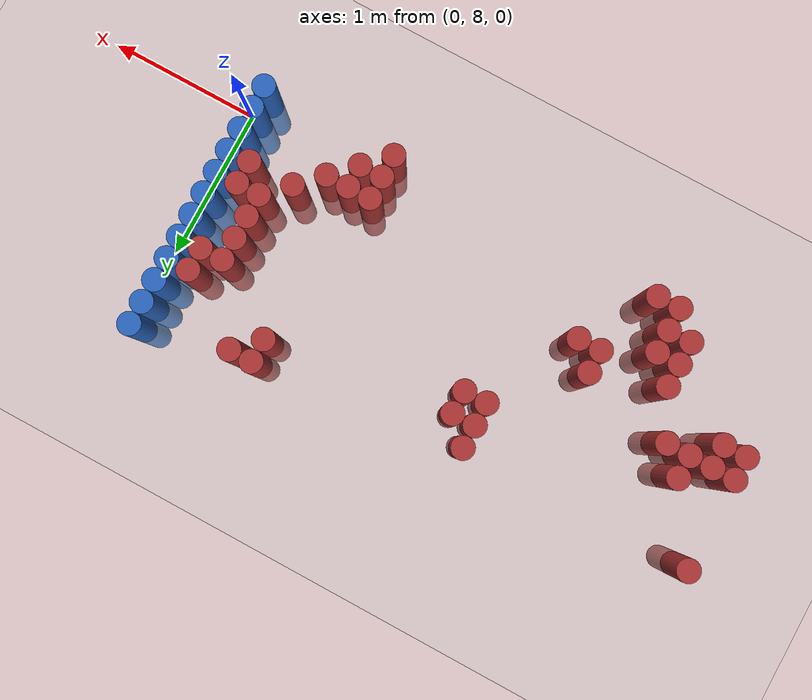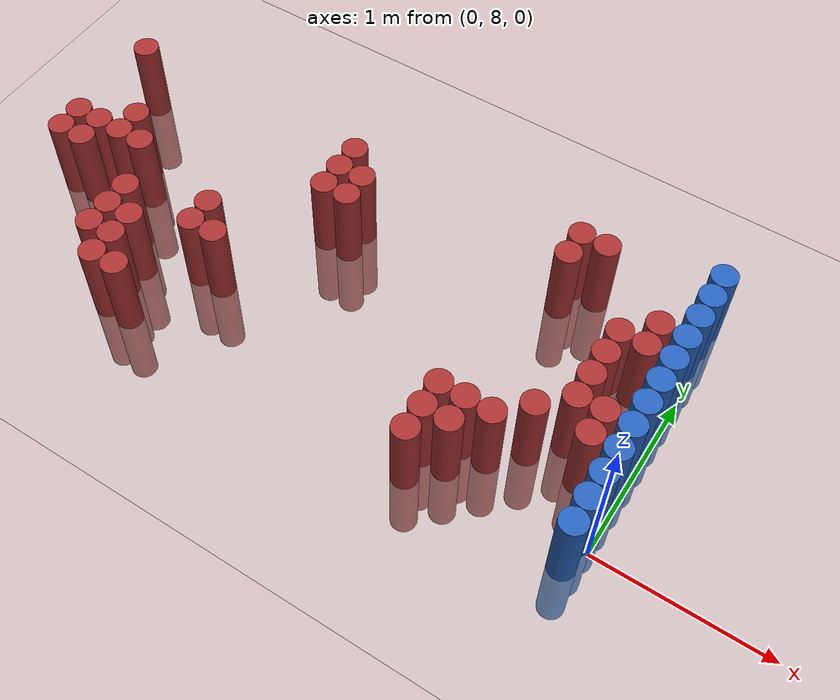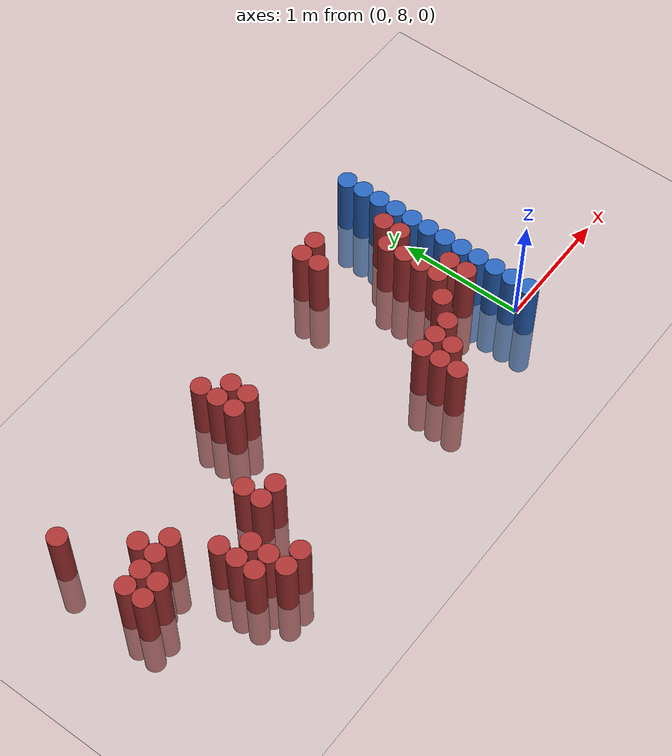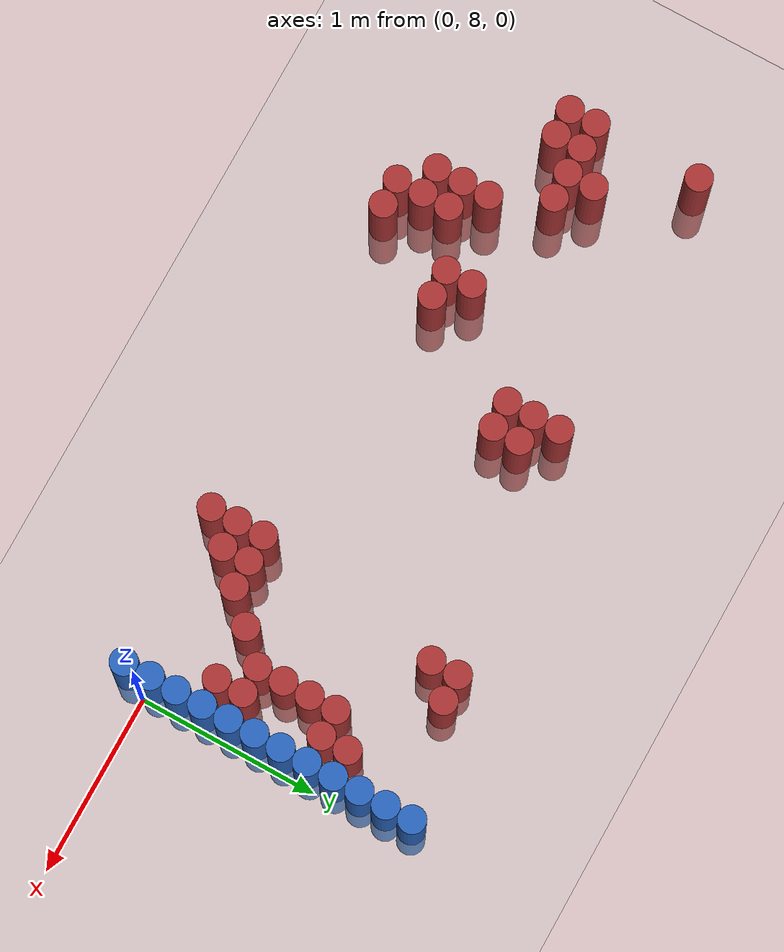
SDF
<sdf version="1.6">
 <world name="default">
  <model name="ground_plane">
   <static>1</static>
   <link name="link">
    <collision name="collision">
     <geometry><plane><normal>0 0 1</normal><size>100 100</size></plane></geometry>
     <surface><friction><ode><mu>100</mu><mu2>50</mu2></ode></friction></surface>
    </collision>
    <visual name="visual">
     <cast_shadows>0</cast_shadows>
     <geometry><plane><normal>0 0 1</normal><size>100 100</size></plane></geometry>
     <material>
      <script><uri>file://media/materials/scripts/gazebo.material</uri><name>Gazebo/Grey</name></script>
     </material>
    </visual>
   </link>
  </model>
  <model name="unit_cylinder_152">
   <static>1</static>
   <pose>-3.675000 8.475000 0.000000 0.000000 0.000000 0.000000</pose>
   <link name="link">
    <inertial>
     <mass>1</mass>
     <inertia><ixx>0.145833</ixx><ixy>0</ixy><ixz>0</ixz><iyy>0.145833</iyy><iyz>0</iyz><izz>0.125</izz></inertia>
    </inertial>
    <collision name="collision">
     <geometry><cylinder><radius>0.075000</radius><length>1</length></cylinder></geometry>
    </collision>
    <visual name="visual">
     <geometry><cylinder><radius>0.075000</radius><length>1</length></cylinder></geometry>
     <material>
      <ambient>0.648000 0.192000 0.192000 1</ambient>
      <diffuse>0.648000 0.192000 0.192000 1</diffuse>
     </material>
     <material>
      <script><name>Gazebo/Grey</name><uri>file://media/materials/scripts/gazebo.material</uri></script>
     </material>
    </visual>
   </link>
  </model>
  <model name="unit_cylinder_153">
   <static>1</static>
   <pose>-3.675000 8.625000 0.000000 0.000000 0.000000 0.000000</pose>
   <link name="link">
    <inertial>
     <mass>1</mass>
     <inertia><ixx>0.145833</ixx><ixy>0</ixy><ixz>0</ixz><iyy>0.145833</iyy><iyz>0</iyz><izz>0.125</izz></inertia>
    </inertial>
    <collision name="collision">
     <geometry><cylinder><radius>0.075000</radius><length>1</length></cylinder></geometry>
    </collision>
    <visual name="visual">
     <geometry><cylinder><radius>0.075000</radius><length>1</length></cylinder></geometry>
     <material>
      <ambient>0.648000 0.192000 0.192000 1</ambient>
      <diffuse>0.648000 0.192000 0.192000 1</diffuse>
     </material>
     <material>
      <script><name>Gazebo/Grey</name><uri>file://media/materials/scripts/gazebo.material</uri></script>
     </material>
    </visual>
   </link>
  </model>
  <model name="unit_cylinder_154">
   <static>1</static>
   <pose>-3.675000 9.225000 0.000000 0.000000 0.000000 0.000000</pose>
   <link name="link">
    <inertial>
     <mass>1</mass>
     <inertia><ixx>0.145833</ixx><ixy>0</ixy><ixz>0</ixz><iyy>0.145833</iyy><iyz>0</iyz><izz>0.125</izz></inertia>
    </inertial>
    <collision name="collision">
     <geometry><cylinder><radius>0.075000</radius><length>1</length></cylinder></geometry>
    </collision>
    <visual name="visual">
     <geometry><cylinder><radius>0.075000</radius><length>1</length></cylinder></geometry>
     <material>
      <ambient>0.648000 0.192000 0.192000 1</ambient>
      <diffuse>0.648000 0.192000 0.192000 1</diffuse>
     </material>
     <material>
      <script><name>Gazebo/Grey</name><uri>file://media/materials/scripts/gazebo.material</uri></script>
     </material>
    </visual>
   </link>
  </model>
  <model name="unit_cylinder_155">
   <static>1</static>
   <pose>-3.525000 8.475000 0.000000 0.000000 0.000000 0.000000</pose>
   <link name="link">
    <inertial>
     <mass>1</mass>
     <inertia><ixx>0.145833</ixx><ixy>0</ixy><ixz>0</ixz><iyy>0.145833</iyy><iyz>0</iyz><izz>0.125</izz></inertia>
    </inertial>
    <collision name="collision">
     <geometry><cylinder><radius>0.075000</radius><length>1</length></cylinder></geometry>
    </collision>
    <visual name="visual">
     <geometry><cylinder><radius>0.075000</radius><length>1</length></cylinder></geometry>
     <material>
      <ambient>0.648000 0.192000 0.192000 1</ambient>
      <diffuse>0.648000 0.192000 0.192000 1</diffuse>
     </material>
     <material>
      <script><name>Gazebo/Grey</name><uri>file://media/materials/scripts/gazebo.material</uri></script>
     </material>
    </visual>
   </link>
  </model>
  <model name="unit_cylinder_156">
   <static>1</static>
   <pose>-3.525000 8.625000 0.000000 0.000000 0.000000 0.000000</pose>
   <link name="link">
    <inertial>
     <mass>1</mass>
     <inertia><ixx>0.145833</ixx><ixy>0</ixy><ixz>0</ixz><iyy>0.145833</iyy><iyz>0</iyz><izz>0.125</izz></inertia>
    </inertial>
    <collision name="collision">
     <geometry><cylinder><radius>0.075000</radius><length>1</length></cylinder></geometry>
    </collision>
    <visual name="visual">
     <geometry><cylinder><radius>0.075000</radius><length>1</length></cylinder></geometry>
     <material>
      <ambient>0.648000 0.192000 0.192000 1</ambient>
      <diffuse>0.648000 0.192000 0.192000 1</diffuse>
     </material>
     <material>
      <script><name>Gazebo/Grey</name><uri>file://media/materials/scripts/gazebo.material</uri></script>
     </material>
    </visual>
   </link>
  </model>
  <model name="unit_cylinder_157">
   <static>1</static>
   <pose>-3.375000 8.625000 0.000000 0.000000 0.000000 0.000000</pose>
   <link name="link">
    <inertial>
     <mass>1</mass>
     <inertia><ixx>0.145833</ixx><ixy>0</ixy><ixz>0</ixz><iyy>0.145833</iyy><iyz>0</iyz><izz>0.125</izz></inertia>
    </inertial>
    <collision name="collision">
     <geometry><cylinder><radius>0.075000</radius><length>1</length></cylinder></geometry>
    </collision>
    <visual name="visual">
     <geometry><cylinder><radius>0.075000</radius><length>1</length></cylinder></geometry>
     <material>
      <ambient>0.648000 0.192000 0.192000 1</ambient>
      <diffuse>0.648000 0.192000 0.192000 1</diffuse>
     </material>
     <material>
      <script><name>Gazebo/Grey</name><uri>file://media/materials/scripts/gazebo.material</uri></script>
     </material>
    </visual>
   </link>
  </model>
  <model name="unit_cylinder_158">
   <static>1</static>
   <pose>-3.375000 8.775000 0.000000 0.000000 0.000000 0.000000</pose>
   <link name="link">
    <inertial>
     <mass>1</mass>
     <inertia><ixx>0.145833</ixx><ixy>0</ixy><ixz>0</ixz><iyy>0.145833</iyy><iyz>0</iyz><izz>0.125</izz></inertia>
    </inertial>
    <collision name="collision">
     <geometry><cylinder><radius>0.075000</radius><length>1</length></cylinder></geometry>
    </collision>
    <visual name="visual">
     <geometry><cylinder><radius>0.075000</radius><length>1</length></cylinder></geometry>
     <material>
      <ambient>0.648000 0.192000 0.192000 1</ambient>
      <diffuse>0.648000 0.192000 0.192000 1</diffuse>
     </material>
     <material>
      <script><name>Gazebo/Grey</name><uri>file://media/materials/scripts/gazebo.material</uri></script>
     </material>
    </visual>
   </link>
  </model>
  <model name="unit_cylinder_160">
   <static>1</static>
   <pose>-3.225000 8.625000 0.000000 0.000000 0.000000 0.000000</pose>
   <link name="link">
    <inertial>
     <mass>1</mass>
     <inertia><ixx>0.145833</ixx><ixy>0</ixy><ixz>0</ixz><iyy>0.145833</iyy><iyz>0</iyz><izz>0.125</izz></inertia>
    </inertial>
    <collision name="collision">
     <geometry><cylinder><radius>0.075000</radius><length>1</length></cylinder></geometry>
    </collision>
    <visual name="visual">
     <geometry><cylinder><radius>0.075000</radius><length>1</length></cylinder></geometry>
     <material>
      <ambient>0.648000 0.192000 0.192000 1</ambient>
      <diffuse>0.648000 0.192000 0.192000 1</diffuse>
     </material>
     <material>
      <script><name>Gazebo/Grey</name><uri>file://media/materials/scripts/gazebo.material</uri></script>
     </material>
    </visual>
   </link>
  </model>
  <model name="unit_cylinder_162">
   <static>1</static>
   <pose>-3.075000 8.025000 0.000000 0.000000 0.000000 0.000000</pose>
   <link name="link">
    <inertial>
     <mass>1</mass>
     <inertia><ixx>0.145833</ixx><ixy>0</ixy><ixz>0</ixz><iyy>0.145833</iyy><iyz>0</iyz><izz>0.125</izz></inertia>
    </inertial>
    <collision name="collision">
     <geometry><cylinder><radius>0.075000</radius><length>1</length></cylinder></geometry>
    </collision>
    <visual name="visual">
     <geometry><cylinder><radius>0.075000</radius><length>1</length></cylinder></geometry>
     <material>
      <ambient>0.648000 0.192000 0.192000 1</ambient>
      <diffuse>0.648000 0.192000 0.192000 1</diffuse>
     </material>
     <material>
      <script><name>Gazebo/Grey</name><uri>file://media/materials/scripts/gazebo.material</uri></script>
     </material>
    </visual>
   </link>
  </model>
  <model name="unit_cylinder_163">
   <static>1</static>
   <pose>-3.075000 8.175000 0.000000 0.000000 0.000000 0.000000</pose>
   <link name="link">
    <inertial>
     <mass>1</mass>
     <inertia><ixx>0.145833</ixx><ixy>0</ixy><ixz>0</ixz><iyy>0.145833</iyy><iyz>0</iyz><izz>0.125</izz></inertia>
    </inertial>
    <collision name="collision">
     <geometry><cylinder><radius>0.075000</radius><length>1</length></cylinder></geometry>
    </collision>
    <visual name="visual">
     <geometry><cylinder><radius>0.075000</radius><length>1</length></cylinder></geometry>
     <material>
      <ambient>0.648000 0.192000 0.192000 1</ambient>
      <diffuse>0.648000 0.192000 0.192000 1</diffuse>
     </material>
     <material>
      <script><name>Gazebo/Grey</name><uri>file://media/materials/scripts/gazebo.material</uri></script>
     </material>
    </visual>
   </link>
  </model>
  <model name="unit_cylinder_164">
   <static>1</static>
   <pose>-3.075000 8.325000 0.000000 0.000000 0.000000 0.000000</pose>
   <link name="link">
    <inertial>
     <mass>1</mass>
     <inertia><ixx>0.145833</ixx><ixy>0</ixy><ixz>0</ixz><iyy>0.145833</iyy><iyz>0</iyz><izz>0.125</izz></inertia>
    </inertial>
    <collision name="collision">
     <geometry><cylinder><radius>0.075000</radius><length>1</length></cylinder></geometry>
    </collision>
    <visual name="visual">
     <geometry><cylinder><radius>0.075000</radius><length>1</length></cylinder></geometry>
     <material>
      <ambient>0.648000 0.192000 0.192000 1</ambient>
      <diffuse>0.648000 0.192000 0.192000 1</diffuse>
     </material>
     <material>
      <script><name>Gazebo/Grey</name><uri>file://media/materials/scripts/gazebo.material</uri></script>
     </material>
    </visual>
   </link>
  </model>
  <model name="unit_cylinder_167">
   <static>1</static>
   <pose>-2.925000 7.875000 0.000000 0.000000 0.000000 0.000000</pose>
   <link name="link">
    <inertial>
     <mass>1</mass>
     <inertia><ixx>0.145833</ixx><ixy>0</ixy><ixz>0</ixz><iyy>0.145833</iyy><iyz>0</iyz><izz>0.125</izz></inertia>
    </inertial>
    <collision name="collision">
     <geometry><cylinder><radius>0.075000</radius><length>1</length></cylinder></geometry>
    </collision>
    <visual name="visual">
     <geometry><cylinder><radius>0.075000</radius><length>1</length></cylinder></geometry>
     <material>
      <ambient>0.648000 0.192000 0.192000 1</ambient>
      <diffuse>0.648000 0.192000 0.192000 1</diffuse>
     </material>
     <material>
      <script><name>Gazebo/Grey</name><uri>file://media/materials/scripts/gazebo.material</uri></script>
     </material>
    </visual>
   </link>
  </model>
  <model name="unit_cylinder_168">
   <static>1</static>
   <pose>-2.925000 8.025000 0.000000 0.000000 0.000000 0.000000</pose>
   <link name="link">
    <inertial>
     <mass>1</mass>
     <inertia><ixx>0.145833</ixx><ixy>0</ixy><ixz>0</ixz><iyy>0.145833</iyy><iyz>0</iyz><izz>0.125</izz></inertia>
    </inertial>
    <collision name="collision">
     <geometry><cylinder><radius>0.075000</radius><length>1</length></cylinder></geometry>
    </collision>
    <visual name="visual">
     <geometry><cylinder><radius>0.075000</radius><length>1</length></cylinder></geometry>
     <material>
      <ambient>0.648000 0.192000 0.192000 1</ambient>
      <diffuse>0.648000 0.192000 0.192000 1</diffuse>
     </material>
     <material>
      <script><name>Gazebo/Grey</name><uri>file://media/materials/scripts/gazebo.material</uri></script>
     </material>
    </visual>
   </link>
  </model>
  <model name="unit_cylinder_169">
   <static>1</static>
   <pose>-2.925000 8.175000 0.000000 0.000000 0.000000 0.000000</pose>
   <link name="link">
    <inertial>
     <mass>1</mass>
     <inertia><ixx>0.145833</ixx><ixy>0</ixy><ixz>0</ixz><iyy>0.145833</iyy><iyz>0</iyz><izz>0.125</izz></inertia>
    </inertial>
    <collision name="collision">
     <geometry><cylinder><radius>0.075000</radius><length>1</length></cylinder></geometry>
    </collision>
    <visual name="visual">
     <geometry><cylinder><radius>0.075000</radius><length>1</length></cylinder></geometry>
     <material>
      <ambient>0.648000 0.192000 0.192000 1</ambient>
      <diffuse>0.648000 0.192000 0.192000 1</diffuse>
     </material>
     <material>
      <script><name>Gazebo/Grey</name><uri>file://media/materials/scripts/gazebo.material</uri></script>
     </material>
    </visual>
   </link>
  </model>
  <model name="unit_cylinder_171">
   <static>1</static>
   <pose>-2.775000 7.875000 0.000000 0.000000 0.000000 0.000000</pose>
   <link name="link">
    <inertial>
     <mass>1</mass>
     <inertia><ixx>0.145833</ixx><ixy>0</ixy><ixz>0</ixz><iyy>0.145833</iyy><iyz>0</iyz><izz>0.125</izz></inertia>
    </inertial>
    <collision name="collision">
     <geometry><cylinder><radius>0.075000</radius><length>1</length></cylinder></geometry>
    </collision>
    <visual name="visual">
     <geometry><cylinder><radius>0.075000</radius><length>1</length></cylinder></geometry>
     <material>
      <ambient>0.648000 0.192000 0.192000 1</ambient>
      <diffuse>0.648000 0.192000 0.192000 1</diffuse>
     </material>
     <material>
      <script><name>Gazebo/Grey</name><uri>file://media/materials/scripts/gazebo.material</uri></script>
     </material>
    </visual>
   </link>
  </model>
  <model name="unit_cylinder_172">
   <static>1</static>
   <pose>-2.625000 8.325000 0.000000 0.000000 0.000000 0.000000</pose>
   <link name="link">
    <inertial>
     <mass>1</mass>
     <inertia><ixx>0.145833</ixx><ixy>0</ixy><ixz>0</ixz><iyy>0.145833</iyy><iyz>0</iyz><izz>0.125</izz></inertia>
    </inertial>
    <collision name="collision">
     <geometry><cylinder><radius>0.075000</radius><length>1</length></cylinder></geometry>
    </collision>
    <visual name="visual">
     <geometry><cylinder><radius>0.075000</radius><length>1</length></cylinder></geometry>
     <material>
      <ambient>0.648000 0.192000 0.192000 1</ambient>
      <diffuse>0.648000 0.192000 0.192000 1</diffuse>
     </material>
     <material>
      <script><name>Gazebo/Grey</name><uri>file://media/materials/scripts/gazebo.material</uri></script>
     </material>
    </visual>
   </link>
  </model>
  <model name="unit_cylinder_173">
   <static>1</static>
   <pose>-2.625000 8.475000 0.000000 0.000000 0.000000 0.000000</pose>
   <link name="link">
    <inertial>
     <mass>1</mass>
     <inertia><ixx>0.145833</ixx><ixy>0</ixy><ixz>0</ixz><iyy>0.145833</iyy><iyz>0</iyz><izz>0.125</izz></inertia>
    </inertial>
    <collision name="collision">
     <geometry><cylinder><radius>0.075000</radius><length>1</length></cylinder></geometry>
    </collision>
    <visual name="visual">
     <geometry><cylinder><radius>0.075000</radius><length>1</length></cylinder></geometry>
     <material>
      <ambient>0.648000 0.192000 0.192000 1</ambient>
      <diffuse>0.648000 0.192000 0.192000 1</diffuse>
     </material>
     <material>
      <script><name>Gazebo/Grey</name><uri>file://media/materials/scripts/gazebo.material</uri></script>
     </material>
    </visual>
   </link>
  </model>
  <model name="unit_cylinder_174">
   <static>1</static>
   <pose>-2.475000 8.325000 0.000000 0.000000 0.000000 0.000000</pose>
   <link name="link">
    <inertial>
     <mass>1</mass>
     <inertia><ixx>0.145833</ixx><ixy>0</ixy><ixz>0</ixz><iyy>0.145833</iyy><iyz>0</iyz><izz>0.125</izz></inertia>
    </inertial>
    <collision name="collision">
     <geometry><cylinder><radius>0.075000</radius><length>1</length></cylinder></geometry>
    </collision>
    <visual name="visual">
     <geometry><cylinder><radius>0.075000</radius><length>1</length></cylinder></geometry>
     <material>
      <ambient>0.648000 0.192000 0.192000 1</ambient>
      <diffuse>0.648000 0.192000 0.192000 1</diffuse>
     </material>
     <material>
      <script><name>Gazebo/Grey</name><uri>file://media/materials/scripts/gazebo.material</uri></script>
     </material>
    </visual>
   </link>
  </model>
  <model name="unit_cylinder_175">
   <static>1</static>
   <pose>-2.175000 8.925000 0.000000 0.000000 0.000000 0.000000</pose>
   <link name="link">
    <inertial>
     <mass>1</mass>
     <inertia><ixx>0.145833</ixx><ixy>0</ixy><ixz>0</ixz><iyy>0.145833</iyy><iyz>0</iyz><izz>0.125</izz></inertia>
    </inertial>
    <collision name="collision">
     <geometry><cylinder><radius>0.075000</radius><length>1</length></cylinder></geometry>
    </collision>
    <visual name="visual">
     <geometry><cylinder><radius>0.075000</radius><length>1</length></cylinder></geometry>
     <material>
      <ambient>0.648000 0.192000 0.192000 1</ambient>
      <diffuse>0.648000 0.192000 0.192000 1</diffuse>
     </material>
     <material>
      <script><name>Gazebo/Grey</name><uri>file://media/materials/scripts/gazebo.material</uri></script>
     </material>
    </visual>
   </link>
  </model>
  <model name="unit_cylinder_176">
   <static>1</static>
   <pose>-2.175000 9.075000 0.000000 0.000000 0.000000 0.000000</pose>
   <link name="link">
    <inertial>
     <mass>1</mass>
     <inertia><ixx>0.145833</ixx><ixy>0</ixy><ixz>0</ixz><iyy>0.145833</iyy><iyz>0</iyz><izz>0.125</izz></inertia>
    </inertial>
    <collision name="collision">
     <geometry><cylinder><radius>0.075000</radius><length>1</length></cylinder></geometry>
    </collision>
    <visual name="visual">
     <geometry><cylinder><radius>0.075000</radius><length>1</length></cylinder></geometry>
     <material>
      <ambient>0.648000 0.192000 0.192000 1</ambient>
      <diffuse>0.648000 0.192000 0.192000 1</diffuse>
     </material>
     <material>
      <script><name>Gazebo/Grey</name><uri>file://media/materials/scripts/gazebo.material</uri></script>
     </material>
    </visual>
   </link>
  </model>
  <model name="unit_cylinder_177">
   <static>1</static>
   <pose>-2.175000 9.225000 0.000000 0.000000 0.000000 0.000000</pose>
   <link name="link">
    <inertial>
     <mass>1</mass>
     <inertia><ixx>0.145833</ixx><ixy>0</ixy><ixz>0</ixz><iyy>0.145833</iyy><iyz>0</iyz><izz>0.125</izz></inertia>
    </inertial>
    <collision name="collision">
     <geometry><cylinder><radius>0.075000</radius><length>1</length></cylinder></geometry>
    </collision>
    <visual name="visual">
     <geometry><cylinder><radius>0.075000</radius><length>1</length></cylinder></geometry>
     <material>
      <ambient>0.648000 0.192000 0.192000 1</ambient>
      <diffuse>0.648000 0.192000 0.192000 1</diffuse>
     </material>
     <material>
      <script><name>Gazebo/Grey</name><uri>file://media/materials/scripts/gazebo.material</uri></script>
     </material>
    </visual>
   </link>
  </model>
  <model name="unit_cylinder_179">
   <static>1</static>
   <pose>-2.025000 8.925000 0.000000 0.000000 0.000000 0.000000</pose>
   <link name="link">
    <inertial>
     <mass>1</mass>
     <inertia><ixx>0.145833</ixx><ixy>0</ixy><ixz>0</ixz><iyy>0.145833</iyy><iyz>0</iyz><izz>0.125</izz></inertia>
    </inertial>
    <collision name="collision">
     <geometry><cylinder><radius>0.075000</radius><length>1</length></cylinder></geometry>
    </collision>
    <visual name="visual">
     <geometry><cylinder><radius>0.075000</radius><length>1</length></cylinder></geometry>
     <material>
      <ambient>0.648000 0.192000 0.192000 1</ambient>
      <diffuse>0.648000 0.192000 0.192000 1</diffuse>
     </material>
     <material>
      <script><name>Gazebo/Grey</name><uri>file://media/materials/scripts/gazebo.material</uri></script>
     </material>
    </visual>
   </link>
  </model>
  <model name="unit_cylinder_180">
   <static>1</static>
   <pose>-2.025000 9.075000 0.000000 0.000000 0.000000 0.000000</pose>
   <link name="link">
    <inertial>
     <mass>1</mass>
     <inertia><ixx>0.145833</ixx><ixy>0</ixy><ixz>0</ixz><iyy>0.145833</iyy><iyz>0</iyz><izz>0.125</izz></inertia>
    </inertial>
    <collision name="collision">
     <geometry><cylinder><radius>0.075000</radius><length>1</length></cylinder></geometry>
    </collision>
    <visual name="visual">
     <geometry><cylinder><radius>0.075000</radius><length>1</length></cylinder></geometry>
     <material>
      <ambient>0.648000 0.192000 0.192000 1</ambient>
      <diffuse>0.648000 0.192000 0.192000 1</diffuse>
     </material>
     <material>
      <script><name>Gazebo/Grey</name><uri>file://media/materials/scripts/gazebo.material</uri></script>
     </material>
    </visual>
   </link>
  </model>
  <model name="unit_cylinder_197">
   <static>1</static>
   <pose>-0.975000 7.875000 0.000000 0.000000 0.000000 0.000000</pose>
   <link name="link">
    <inertial>
     <mass>1</mass>
     <inertia><ixx>0.145833</ixx><ixy>0</ixy><ixz>0</ixz><iyy>0.145833</iyy><iyz>0</iyz><izz>0.125</izz></inertia>
    </inertial>
    <collision name="collision">
     <geometry><cylinder><radius>0.075000</radius><length>1</length></cylinder></geometry>
    </collision>
    <visual name="visual">
     <geometry><cylinder><radius>0.075000</radius><length>1</length></cylinder></geometry>
     <material>
      <ambient>0.648000 0.192000 0.192000 1</ambient>
      <diffuse>0.648000 0.192000 0.192000 1</diffuse>
     </material>
     <material>
      <script><name>Gazebo/Grey</name><uri>file://media/materials/scripts/gazebo.material</uri></script>
     </material>
    </visual>
   </link>
  </model>
  <model name="unit_cylinder_198">
   <static>1</static>
   <pose>-0.975000 8.025000 0.000000 0.000000 0.000000 0.000000</pose>
   <link name="link">
    <inertial>
     <mass>1</mass>
     <inertia><ixx>0.145833</ixx><ixy>0</ixy><ixz>0</ixz><iyy>0.145833</iyy><iyz>0</iyz><izz>0.125</izz></inertia>
    </inertial>
    <collision name="collision">
     <geometry><cylinder><radius>0.075000</radius><length>1</length></cylinder></geometry>
    </collision>
    <visual name="visual">
     <geometry><cylinder><radius>0.075000</radius><length>1</length></cylinder></geometry>
     <material>
      <ambient>0.648000 0.192000 0.192000 1</ambient>
      <diffuse>0.648000 0.192000 0.192000 1</diffuse>
     </material>
     <material>
      <script><name>Gazebo/Grey</name><uri>file://media/materials/scripts/gazebo.material</uri></script>
     </material>
    </visual>
   </link>
  </model>
  <model name="unit_cylinder_199">
   <static>1</static>
   <pose>-0.975000 8.175000 0.000000 0.000000 0.000000 0.000000</pose>
   <link name="link">
    <inertial>
     <mass>1</mass>
     <inertia><ixx>0.145833</ixx><ixy>0</ixy><ixz>0</ixz><iyy>0.145833</iyy><iyz>0</iyz><izz>0.125</izz></inertia>
    </inertial>
    <collision name="collision">
     <geometry><cylinder><radius>0.075000</radius><length>1</length></cylinder></geometry>
    </collision>
    <visual name="visual">
     <geometry><cylinder><radius>0.075000</radius><length>1</length></cylinder></geometry>
     <material>
      <ambient>0.648000 0.192000 0.192000 1</ambient>
      <diffuse>0.648000 0.192000 0.192000 1</diffuse>
     </material>
     <material>
      <script><name>Gazebo/Grey</name><uri>file://media/materials/scripts/gazebo.material</uri></script>
     </material>
    </visual>
   </link>
  </model>
  <model name="unit_cylinder_200">
   <static>1</static>
   <pose>-0.825000 8.025000 0.000000 0.000000 0.000000 0.000000</pose>
   <link name="link">
    <inertial>
     <mass>1</mass>
     <inertia><ixx>0.145833</ixx><ixy>0</ixy><ixz>0</ixz><iyy>0.145833</iyy><iyz>0</iyz><izz>0.125</izz></inertia>
    </inertial>
    <collision name="collision">
     <geometry><cylinder><radius>0.075000</radius><length>1</length></cylinder></geometry>
    </collision>
    <visual name="visual">
     <geometry><cylinder><radius>0.075000</radius><length>1</length></cylinder></geometry>
     <material>
      <ambient>0.648000 0.192000 0.192000 1</ambient>
      <diffuse>0.648000 0.192000 0.192000 1</diffuse>
     </material>
     <material>
      <script><name>Gazebo/Grey</name><uri>file://media/materials/scripts/gazebo.material</uri></script>
     </material>
    </visual>
   </link>
  </model>
  <model name="unit_cylinder_201">
   <static>1</static>
   <pose>-0.825000 8.175000 0.000000 0.000000 0.000000 0.000000</pose>
   <link name="link">
    <inertial>
     <mass>1</mass>
     <inertia><ixx>0.145833</ixx><ixy>0</ixy><ixz>0</ixz><iyy>0.145833</iyy><iyz>0</iyz><izz>0.125</izz></inertia>
    </inertial>
    <collision name="collision">
     <geometry><cylinder><radius>0.075000</radius><length>1</length></cylinder></geometry>
    </collision>
    <visual name="visual">
     <geometry><cylinder><radius>0.075000</radius><length>1</length></cylinder></geometry>
     <material>
      <ambient>0.648000 0.192000 0.192000 1</ambient>
      <diffuse>0.648000 0.192000 0.192000 1</diffuse>
     </material>
     <material>
      <script><name>Gazebo/Grey</name><uri>file://media/materials/scripts/gazebo.material</uri></script>
     </material>
    </visual>
   </link>
  </model>
  <model name="unit_cylinder_202">
   <static>1</static>
   <pose>-0.825000 9.225000 0.000000 0.000000 0.000000 0.000000</pose>
   <link name="link">
    <inertial>
     <mass>1</mass>
     <inertia><ixx>0.145833</ixx><ixy>0</ixy><ixz>0</ixz><iyy>0.145833</iyy><iyz>0</iyz><izz>0.125</izz></inertia>
    </inertial>
    <collision name="collision">
     <geometry><cylinder><radius>0.075000</radius><length>1</length></cylinder></geometry>
    </collision>
    <visual name="visual">
     <geometry><cylinder><radius>0.075000</radius><length>1</length></cylinder></geometry>
     <material>
      <ambient>0.648000 0.192000 0.192000 1</ambient>
      <diffuse>0.648000 0.192000 0.192000 1</diffuse>
     </material>
     <material>
      <script><name>Gazebo/Grey</name><uri>file://media/materials/scripts/gazebo.material</uri></script>
     </material>
    </visual>
   </link>
  </model>
  <model name="unit_cylinder_203">
   <static>1</static>
   <pose>-0.825000 9.375000 0.000000 0.000000 0.000000 0.000000</pose>
   <link name="link">
    <inertial>
     <mass>1</mass>
     <inertia><ixx>0.145833</ixx><ixy>0</ixy><ixz>0</ixz><iyy>0.145833</iyy><iyz>0</iyz><izz>0.125</izz></inertia>
    </inertial>
    <collision name="collision">
     <geometry><cylinder><radius>0.075000</radius><length>1</length></cylinder></geometry>
    </collision>
    <visual name="visual">
     <geometry><cylinder><radius>0.075000</radius><length>1</length></cylinder></geometry>
     <material>
      <ambient>0.648000 0.192000 0.192000 1</ambient>
      <diffuse>0.648000 0.192000 0.192000 1</diffuse>
     </material>
     <material>
      <script><name>Gazebo/Grey</name><uri>file://media/materials/scripts/gazebo.material</uri></script>
     </material>
    </visual>
   </link>
  </model>
  <model name="unit_cylinder_207">
   <static>1</static>
   <pose>-0.675000 8.175000 0.000000 0.000000 0.000000 0.000000</pose>
   <link name="link">
    <inertial>
     <mass>1</mass>
     <inertia><ixx>0.145833</ixx><ixy>0</ixy><ixz>0</ixz><iyy>0.145833</iyy><iyz>0</iyz><izz>0.125</izz></inertia>
    </inertial>
    <collision name="collision">
     <geometry><cylinder><radius>0.075000</radius><length>1</length></cylinder></geometry>
    </collision>
    <visual name="visual">
     <geometry><cylinder><radius>0.075000</radius><length>1</length></cylinder></geometry>
     <material>
      <ambient>0.648000 0.192000 0.192000 1</ambient>
      <diffuse>0.648000 0.192000 0.192000 1</diffuse>
     </material>
     <material>
      <script><name>Gazebo/Grey</name><uri>file://media/materials/scripts/gazebo.material</uri></script>
     </material>
    </visual>
   </link>
  </model>
  <model name="unit_cylinder_208">
   <static>1</static>
   <pose>-0.675000 9.375000 0.000000 0.000000 0.000000 0.000000</pose>
   <link name="link">
    <inertial>
     <mass>1</mass>
     <inertia><ixx>0.145833</ixx><ixy>0</ixy><ixz>0</ixz><iyy>0.145833</iyy><iyz>0</iyz><izz>0.125</izz></inertia>
    </inertial>
    <collision name="collision">
     <geometry><cylinder><radius>0.075000</radius><length>1</length></cylinder></geometry>
    </collision>
    <visual name="visual">
     <geometry><cylinder><radius>0.075000</radius><length>1</length></cylinder></geometry>
     <material>
      <ambient>0.648000 0.192000 0.192000 1</ambient>
      <diffuse>0.648000 0.192000 0.192000 1</diffuse>
     </material>
     <material>
      <script><name>Gazebo/Grey</name><uri>file://media/materials/scripts/gazebo.material</uri></script>
     </material>
    </visual>
   </link>
  </model>
  <model name="unit_cylinder_213">
   <static>1</static>
   <pose>-0.525000 8.325000 0.000000 0.000000 0.000000 0.000000</pose>
   <link name="link">
    <inertial>
     <mass>1</mass>
     <inertia><ixx>0.145833</ixx><ixy>0</ixy><ixz>0</ixz><iyy>0.145833</iyy><iyz>0</iyz><izz>0.125</izz></inertia>
    </inertial>
    <collision name="collision">
     <geometry><cylinder><radius>0.075000</radius><length>1</length></cylinder></geometry>
    </collision>
    <visual name="visual">
     <geometry><cylinder><radius>0.075000</radius><length>1</length></cylinder></geometry>
     <material>
      <ambient>0.648000 0.192000 0.192000 1</ambient>
      <diffuse>0.648000 0.192000 0.192000 1</diffuse>
     </material>
     <material>
      <script><name>Gazebo/Grey</name><uri>file://media/materials/scripts/gazebo.material</uri></script>
     </material>
    </visual>
   </link>
  </model>
  <model name="unit_cylinder_217">
   <static>1</static>
   <pose>-0.375000 8.475000 0.000000 0.000000 0.000000 0.000000</pose>
   <link name="link">
    <inertial>
     <mass>1</mass>
     <inertia><ixx>0.145833</ixx><ixy>0</ixy><ixz>0</ixz><iyy>0.145833</iyy><iyz>0</iyz><izz>0.125</izz></inertia>
    </inertial>
    <collision name="collision">
     <geometry><cylinder><radius>0.075000</radius><length>1</length></cylinder></geometry>
    </collision>
    <visual name="visual">
     <geometry><cylinder><radius>0.075000</radius><length>1</length></cylinder></geometry>
     <material>
      <ambient>0.648000 0.192000 0.192000 1</ambient>
      <diffuse>0.648000 0.192000 0.192000 1</diffuse>
     </material>
     <material>
      <script><name>Gazebo/Grey</name><uri>file://media/materials/scripts/gazebo.material</uri></script>
     </material>
    </visual>
   </link>
  </model>
  <model name="unit_cylinder_218">
   <static>1</static>
   <pose>-0.375000 8.625000 0.000000 0.000000 0.000000 0.000000</pose>
   <link name="link">
    <inertial>
     <mass>1</mass>
     <inertia><ixx>0.145833</ixx><ixy>0</ixy><ixz>0</ixz><iyy>0.145833</iyy><iyz>0</iyz><izz>0.125</izz></inertia>
    </inertial>
    <collision name="collision">
     <geometry><cylinder><radius>0.075000</radius><length>1</length></cylinder></geometry>
    </collision>
    <visual name="visual">
     <geometry><cylinder><radius>0.075000</radius><length>1</length></cylinder></geometry>
     <material>
      <ambient>0.648000 0.192000 0.192000 1</ambient>
      <diffuse>0.648000 0.192000 0.192000 1</diffuse>
     </material>
     <material>
      <script><name>Gazebo/Grey</name><uri>file://media/materials/scripts/gazebo.material</uri></script>
     </material>
    </visual>
   </link>
  </model>
  <model name="unit_cylinder_219">
   <static>1</static>
   <pose>-0.375000 8.775000 0.000000 0.000000 0.000000 0.000000</pose>
   <link name="link">
    <inertial>
     <mass>1</mass>
     <inertia><ixx>0.145833</ixx><ixy>0</ixy><ixz>0</ixz><iyy>0.145833</iyy><iyz>0</iyz><izz>0.125</izz></inertia>
    </inertial>
    <collision name="collision">
     <geometry><cylinder><radius>0.075000</radius><length>1</length></cylinder></geometry>
    </collision>
    <visual name="visual">
     <geometry><cylinder><radius>0.075000</radius><length>1</length></cylinder></geometry>
     <material>
      <ambient>0.648000 0.192000 0.192000 1</ambient>
      <diffuse>0.648000 0.192000 0.192000 1</diffuse>
     </material>
     <material>
      <script><name>Gazebo/Grey</name><uri>file://media/materials/scripts/gazebo.material</uri></script>
     </material>
    </visual>
   </link>
  </model>
  <model name="unit_cylinder_220">
   <static>1</static>
   <pose>-0.375000 8.925000 0.000000 0.000000 0.000000 0.000000</pose>
   <link name="link">
    <inertial>
     <mass>1</mass>
     <inertia><ixx>0.145833</ixx><ixy>0</ixy><ixz>0</ixz><iyy>0.145833</iyy><iyz>0</iyz><izz>0.125</izz></inertia>
    </inertial>
    <collision name="collision">
     <geometry><cylinder><radius>0.075000</radius><length>1</length></cylinder></geometry>
    </collision>
    <visual name="visual">
     <geometry><cylinder><radius>0.075000</radius><length>1</length></cylinder></geometry>
     <material>
      <ambient>0.648000 0.192000 0.192000 1</ambient>
      <diffuse>0.648000 0.192000 0.192000 1</diffuse>
     </material>
     <material>
      <script><name>Gazebo/Grey</name><uri>file://media/materials/scripts/gazebo.material</uri></script>
     </material>
    </visual>
   </link>
  </model>
  <model name="unit_cylinder_227">
   <static>1</static>
   <pose>-0.225000 8.325000 0.000000 0.000000 0.000000 0.000000</pose>
   <link name="link">
    <inertial>
     <mass>1</mass>
     <inertia><ixx>0.145833</ixx><ixy>0</ixy><ixz>0</ixz><iyy>0.145833</iyy><iyz>0</iyz><izz>0.125</izz></inertia>
    </inertial>
    <collision name="collision">
     <geometry><cylinder><radius>0.075000</radius><length>1</length></cylinder></geometry>
    </collision>
    <visual name="visual">
     <geometry><cylinder><radius>0.075000</radius><length>1</length></cylinder></geometry>
     <material>
      <ambient>0.648000 0.192000 0.192000 1</ambient>
      <diffuse>0.648000 0.192000 0.192000 1</diffuse>
     </material>
     <material>
      <script><name>Gazebo/Grey</name><uri>file://media/materials/scripts/gazebo.material</uri></script>
     </material>
    </visual>
   </link>
  </model>
  <model name="unit_cylinder_228">
   <static>1</static>
   <pose>-0.225000 8.475000 0.000000 0.000000 0.000000 0.000000</pose>
   <link name="link">
    <inertial>
     <mass>1</mass>
     <inertia><ixx>0.145833</ixx><ixy>0</ixy><ixz>0</ixz><iyy>0.145833</iyy><iyz>0</iyz><izz>0.125</izz></inertia>
    </inertial>
    <collision name="collision">
     <geometry><cylinder><radius>0.075000</radius><length>1</length></cylinder></geometry>
    </collision>
    <visual name="visual">
     <geometry><cylinder><radius>0.075000</radius><length>1</length></cylinder></geometry>
     <material>
      <ambient>0.648000 0.192000 0.192000 1</ambient>
      <diffuse>0.648000 0.192000 0.192000 1</diffuse>
     </material>
     <material>
      <script><name>Gazebo/Grey</name><uri>file://media/materials/scripts/gazebo.material</uri></script>
     </material>
    </visual>
   </link>
  </model>
  <model name="unit_cylinder_229">
   <static>1</static>
   <pose>-0.225000 8.925000 0.000000 0.000000 0.000000 0.000000</pose>
   <link name="link">
    <inertial>
     <mass>1</mass>
     <inertia><ixx>0.145833</ixx><ixy>0</ixy><ixz>0</ixz><iyy>0.145833</iyy><iyz>0</iyz><izz>0.125</izz></inertia>
    </inertial>
    <collision name="collision">
     <geometry><cylinder><radius>0.075000</radius><length>1</length></cylinder></geometry>
    </collision>
    <visual name="visual">
     <geometry><cylinder><radius>0.075000</radius><length>1</length></cylinder></geometry>
     <material>
      <ambient>0.648000 0.192000 0.192000 1</ambient>
      <diffuse>0.648000 0.192000 0.192000 1</diffuse>
     </material>
     <material>
      <script><name>Gazebo/Grey</name><uri>file://media/materials/scripts/gazebo.material</uri></script>
     </material>
    </visual>
   </link>
  </model>
  <model name="unit_cylinder_230">
   <static>1</static>
   <pose>-0.225000 9.075000 0.000000 0.000000 0.000000 0.000000</pose>
   <link name="link">
    <inertial>
     <mass>1</mass>
     <inertia><ixx>0.145833</ixx><ixy>0</ixy><ixz>0</ixz><iyy>0.145833</iyy><iyz>0</iyz><izz>0.125</izz></inertia>
    </inertial>
    <collision name="collision">
     <geometry><cylinder><radius>0.075000</radius><length>1</length></cylinder></geometry>
    </collision>
    <visual name="visual">
     <geometry><cylinder><radius>0.075000</radius><length>1</length></cylinder></geometry>
     <material>
      <ambient>0.648000 0.192000 0.192000 1</ambient>
      <diffuse>0.648000 0.192000 0.192000 1</diffuse>
     </material>
     <material>
      <script><name>Gazebo/Grey</name><uri>file://media/materials/scripts/gazebo.material</uri></script>
     </material>
    </visual>
   </link>
  </model>
  <model name="unit_cylinder_249">
   <static>1</static>
   <pose>-0.075000 7.875000 0.000000 0.000000 0.000000 0.000000</pose>
   <link name="link">
    <inertial>
     <mass>1</mass>
     <inertia><ixx>0.145833</ixx><ixy>0</ixy><ixz>0</ixz><iyy>0.145833</iyy><iyz>0</iyz><izz>0.125</izz></inertia>
    </inertial>
    <collision name="collision">
     <geometry><cylinder><radius>0.075000</radius><length>1</length></cylinder></geometry>
    </collision>
    <visual name="visual">
     <geometry><cylinder><radius>0.075000</radius><length>1</length></cylinder></geometry>
     <material>
      <ambient>0.152000 0.379000 0.720000 1</ambient>
      <diffuse>0.152000 0.379000 0.720000 1</diffuse>
     </material>
     <material>
      <script><name>Gazebo/Grey</name><uri>file://media/materials/scripts/gazebo.material</uri></script>
     </material>
    </visual>
   </link>
  </model>
  <model name="unit_cylinder_250">
   <static>1</static>
   <pose>-0.075000 8.025000 0.000000 0.000000 0.000000 0.000000</pose>
   <link name="link">
    <inertial>
     <mass>1</mass>
     <inertia><ixx>0.145833</ixx><ixy>0</ixy><ixz>0</ixz><iyy>0.145833</iyy><iyz>0</iyz><izz>0.125</izz></inertia>
    </inertial>
    <collision name="collision">
     <geometry><cylinder><radius>0.075000</radius><length>1</length></cylinder></geometry>
    </collision>
    <visual name="visual">
     <geometry><cylinder><radius>0.075000</radius><length>1</length></cylinder></geometry>
     <material>
      <ambient>0.152000 0.379000 0.720000 1</ambient>
      <diffuse>0.152000 0.379000 0.720000 1</diffuse>
     </material>
     <material>
      <script><name>Gazebo/Grey</name><uri>file://media/materials/scripts/gazebo.material</uri></script>
     </material>
    </visual>
   </link>
  </model>
  <model name="unit_cylinder_251">
   <static>1</static>
   <pose>-0.075000 8.175000 0.000000 0.000000 0.000000 0.000000</pose>
   <link name="link">
    <inertial>
     <mass>1</mass>
     <inertia><ixx>0.145833</ixx><ixy>0</ixy><ixz>0</ixz><iyy>0.145833</iyy><iyz>0</iyz><izz>0.125</izz></inertia>
    </inertial>
    <collision name="collision">
     <geometry><cylinder><radius>0.075000</radius><length>1</length></cylinder></geometry>
    </collision>
    <visual name="visual">
     <geometry><cylinder><radius>0.075000</radius><length>1</length></cylinder></geometry>
     <material>
      <ambient>0.152000 0.379000 0.720000 1</ambient>
      <diffuse>0.152000 0.379000 0.720000 1</diffuse>
     </material>
     <material>
      <script><name>Gazebo/Grey</name><uri>file://media/materials/scripts/gazebo.material</uri></script>
     </material>
    </visual>
   </link>
  </model>
  <model name="unit_cylinder_252">
   <static>1</static>
   <pose>-0.075000 8.325000 0.000000 0.000000 0.000000 0.000000</pose>
   <link name="link">
    <inertial>
     <mass>1</mass>
     <inertia><ixx>0.145833</ixx><ixy>0</ixy><ixz>0</ixz><iyy>0.145833</iyy><iyz>0</iyz><izz>0.125</izz></inertia>
    </inertial>
    <collision name="collision">
     <geometry><cylinder><radius>0.075000</radius><length>1</length></cylinder></geometry>
    </collision>
    <visual name="visual">
     <geometry><cylinder><radius>0.075000</radius><length>1</length></cylinder></geometry>
     <material>
      <ambient>0.152000 0.379000 0.720000 1</ambient>
      <diffuse>0.152000 0.379000 0.720000 1</diffuse>
     </material>
     <material>
      <script><name>Gazebo/Grey</name><uri>file://media/materials/scripts/gazebo.material</uri></script>
     </material>
    </visual>
   </link>
  </model>
  <model name="unit_cylinder_253">
   <static>1</static>
   <pose>-0.075000 8.475000 0.000000 0.000000 0.000000 0.000000</pose>
   <link name="link">
    <inertial>
     <mass>1</mass>
     <inertia><ixx>0.145833</ixx><ixy>0</ixy><ixz>0</ixz><iyy>0.145833</iyy><iyz>0</iyz><izz>0.125</izz></inertia>
    </inertial>
    <collision name="collision">
     <geometry><cylinder><radius>0.075000</radius><length>1</length></cylinder></geometry>
    </collision>
    <visual name="visual">
     <geometry><cylinder><radius>0.075000</radius><length>1</length></cylinder></geometry>
     <material>
      <ambient>0.152000 0.379000 0.720000 1</ambient>
      <diffuse>0.152000 0.379000 0.720000 1</diffuse>
     </material>
     <material>
      <script><name>Gazebo/Grey</name><uri>file://media/materials/scripts/gazebo.material</uri></script>
     </material>
    </visual>
   </link>
  </model>
  <model name="unit_cylinder_254">
   <static>1</static>
   <pose>-0.075000 8.625000 0.000000 0.000000 0.000000 0.000000</pose>
   <link name="link">
    <inertial>
     <mass>1</mass>
     <inertia><ixx>0.145833</ixx><ixy>0</ixy><ixz>0</ixz><iyy>0.145833</iyy><iyz>0</iyz><izz>0.125</izz></inertia>
    </inertial>
    <collision name="collision">
     <geometry><cylinder><radius>0.075000</radius><length>1</length></cylinder></geometry>
    </collision>
    <visual name="visual">
     <geometry><cylinder><radius>0.075000</radius><length>1</length></cylinder></geometry>
     <material>
      <ambient>0.152000 0.379000 0.720000 1</ambient>
      <diffuse>0.152000 0.379000 0.720000 1</diffuse>
     </material>
     <material>
      <script><name>Gazebo/Grey</name><uri>file://media/materials/scripts/gazebo.material</uri></script>
     </material>
    </visual>
   </link>
  </model>
  <model name="unit_cylinder_255">
   <static>1</static>
   <pose>-0.075000 8.775000 0.000000 0.000000 0.000000 0.000000</pose>
   <link name="link">
    <inertial>
     <mass>1</mass>
     <inertia><ixx>0.145833</ixx><ixy>0</ixy><ixz>0</ixz><iyy>0.145833</iyy><iyz>0</iyz><izz>0.125</izz></inertia>
    </inertial>
    <collision name="collision">
     <geometry><cylinder><radius>0.075000</radius><length>1</length></cylinder></geometry>
    </collision>
    <visual name="visual">
     <geometry><cylinder><radius>0.075000</radius><length>1</length></cylinder></geometry>
     <material>
      <ambient>0.152000 0.379000 0.720000 1</ambient>
      <diffuse>0.152000 0.379000 0.720000 1</diffuse>
     </material>
     <material>
      <script><name>Gazebo/Grey</name><uri>file://media/materials/scripts/gazebo.material</uri></script>
     </material>
    </visual>
   </link>
  </model>
  <model name="unit_cylinder_256">
   <static>1</static>
   <pose>-0.075000 8.925000 0.000000 0.000000 0.000000 0.000000</pose>
   <link name="link">
    <inertial>
     <mass>1</mass>
     <inertia><ixx>0.145833</ixx><ixy>0</ixy><ixz>0</ixz><iyy>0.145833</iyy><iyz>0</iyz><izz>0.125</izz></inertia>
    </inertial>
    <collision name="collision">
     <geometry><cylinder><radius>0.075000</radius><length>1</length></cylinder></geometry>
    </collision>
    <visual name="visual">
     <geometry><cylinder><radius>0.075000</radius><length>1</length></cylinder></geometry>
     <material>
      <ambient>0.152000 0.379000 0.720000 1</ambient>
      <diffuse>0.152000 0.379000 0.720000 1</diffuse>
     </material>
     <material>
      <script><name>Gazebo/Grey</name><uri>file://media/materials/scripts/gazebo.material</uri></script>
     </material>
    </visual>
   </link>
  </model>
  <model name="unit_cylinder_257">
   <static>1</static>
   <pose>-0.075000 9.075000 0.000000 0.000000 0.000000 0.000000</pose>
   <link name="link">
    <inertial>
     <mass>1</mass>
     <inertia><ixx>0.145833</ixx><ixy>0</ixy><ixz>0</ixz><iyy>0.145833</iyy><iyz>0</iyz><izz>0.125</izz></inertia>
    </inertial>
    <collision name="collision">
     <geometry><cylinder><radius>0.075000</radius><length>1</length></cylinder></geometry>
    </collision>
    <visual name="visual">
     <geometry><cylinder><radius>0.075000</radius><length>1</length></cylinder></geometry>
     <material>
      <ambient>0.152000 0.379000 0.720000 1</ambient>
      <diffuse>0.152000 0.379000 0.720000 1</diffuse>
     </material>
     <material>
      <script><name>Gazebo/Grey</name><uri>file://media/materials/scripts/gazebo.material</uri></script>
     </material>
    </visual>
   </link>
  </model>
  <model name="unit_cylinder_258">
   <static>1</static>
   <pose>-0.075000 9.225000 0.000000 0.000000 0.000000 0.000000</pose>
   <link name="link">
    <inertial>
     <mass>1</mass>
     <inertia><ixx>0.145833</ixx><ixy>0</ixy><ixz>0</ixz><iyy>0.145833</iyy><iyz>0</iyz><izz>0.125</izz></inertia>
    </inertial>
    <collision name="collision">
     <geometry><cylinder><radius>0.075000</radius><length>1</length></cylinder></geometry>
    </collision>
    <visual name="visual">
     <geometry><cylinder><radius>0.075000</radius><length>1</length></cylinder></geometry>
     <material>
      <ambient>0.152000 0.379000 0.720000 1</ambient>
      <diffuse>0.152000 0.379000 0.720000 1</diffuse>
     </material>
     <material>
      <script><name>Gazebo/Grey</name><uri>file://media/materials/scripts/gazebo.material</uri></script>
     </material>
    </visual>
   </link>
  </model>
  <model name="unit_cylinder_259">
   <static>1</static>
   <pose>-0.075000 9.375000 0.000000 0.000000 0.000000 0.000000</pose>
   <link name="link">
    <inertial>
     <mass>1</mass>
     <inertia><ixx>0.145833</ixx><ixy>0</ixy><ixz>0</ixz><iyy>0.145833</iyy><iyz>0</iyz><izz>0.125</izz></inertia>
    </inertial>
    <collision name="collision">
     <geometry><cylinder><radius>0.075000</radius><length>1</length></cylinder></geometry>
    </collision>
    <visual name="visual">
     <geometry><cylinder><radius>0.075000</radius><length>1</length></cylinder></geometry>
     <material>
      <ambient>0.152000 0.379000 0.720000 1</ambient>
      <diffuse>0.152000 0.379000 0.720000 1</diffuse>
     </material>
     <material>
      <script><name>Gazebo/Grey</name><uri>file://media/materials/scripts/gazebo.material</uri></script>
     </material>
    </visual>
   </link>
  </model>
  <model name="unit_cylinder_260">
   <static>1</static>
   <pose>-0.075000 9.525000 0.000000 0.000000 0.000000 0.000000</pose>
   <link name="link">
    <inertial>
     <mass>1</mass>
     <inertia><ixx>0.145833</ixx><ixy>0</ixy><ixz>0</ixz><iyy>0.145833</iyy><iyz>0</iyz><izz>0.125</izz></inertia>
    </inertial>
    <collision name="collision">
     <geometry><cylinder><radius>0.075000</radius><length>1</length></cylinder></geometry>
    </collision>
    <visual name="visual">
     <geometry><cylinder><radius>0.075000</radius><length>1</length></cylinder></geometry>
     <material>
      <ambient>0.152000 0.379000 0.720000 1</ambient>
      <diffuse>0.152000 0.379000 0.720000 1</diffuse>
     </material>
     <material>
      <script><name>Gazebo/Grey</name><uri>file://media/materials/scripts/gazebo.material</uri></script>
     </material>
    </visual>
   </link>
  </model>
 </world>
</sdf>
